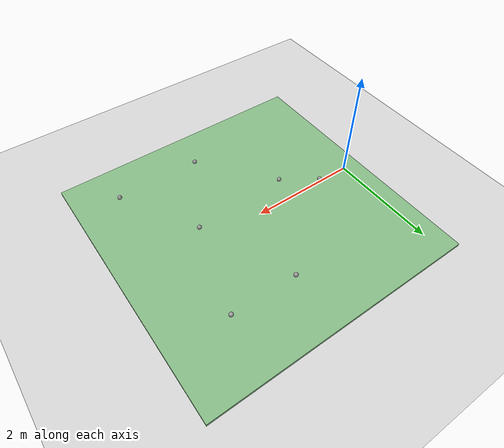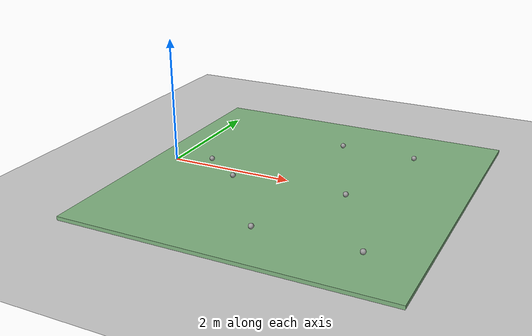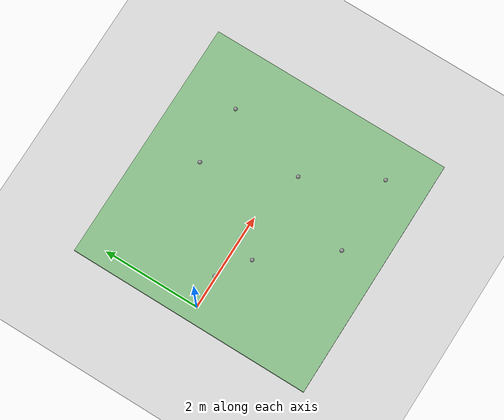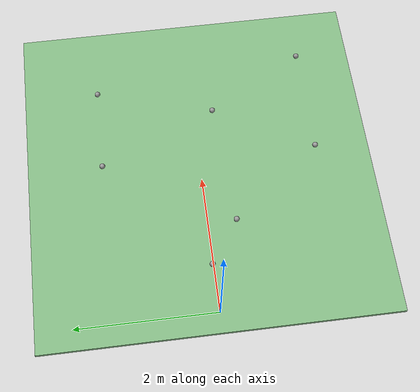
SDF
<sdf version="1.6">
 <world name="default">
  <light name="sun" type="directional">
   <pose>0 0 10 0 -0 0</pose>
   <diffuse>0.8 0.8 0.8 1</diffuse>
   <specular>0.2 0.2 0.2 1</specular>
   <attenuation>
    <range>1000</range>
    <constant>0.9</constant>
    <linear>0.01</linear>
    <quadratic>0.001</quadratic>
   </attenuation>
   <direction>-0.5 0.1 -0.9</direction>
  </light>
  <model name="ground_plane">
   <static>1</static>
   <link name="link">
    <collision name="collision">
     <geometry><plane><normal>0 0 1</normal><size>100 100</size></plane></geometry>
     <surface>
      <contact><collide_bitmask>65535</collide_bitmask></contact>
      <friction><ode><mu>100</mu><mu2>50</mu2></ode></friction>
     </surface>
    </collision>
    <visual name="visual">
     <cast_shadows>0</cast_shadows>
     <geometry><plane><normal>0 0 1</normal><size>100 100</size></plane></geometry>
     <material>
      <script><uri>file://media/materials/scripts/gazebo.material</uri><name>Gazebo/Grey</name></script>
     </material>
    </visual>
   </link>
  </model>
  <gravity>0 0 -9.8</gravity>
  <magnetic_field>6e-06 2.3e-05 -4.2e-05</magnetic_field>
  <atmosphere type="adiabatic"/>
  <physics name="default_physics" default="0" type="ode">
   <max_step_size>0.001</max_step_size>
   <real_time_factor>1</real_time_factor>
   <real_time_update_rate>1000</real_time_update_rate>
  </physics>
  <scene><ambient>0.4 0.4 0.4 1</ambient><background>0.7 0.7 0.7 1</background><shadows>1</shadows></scene>
  <audio><device>default</device></audio>
  <spherical_coordinates>
   <surface_model>EARTH_WGS84</surface_model>
   <latitude_deg>0</latitude_deg>
   <longitude_deg>0</longitude_deg>
   <elevation>0</elevation>
   <heading_deg>0</heading_deg>
  </spherical_coordinates>
  <model name="asphalt_plane_0">
   <link name="link">
    <inertial>
     <mass>1</mass>
     <inertia><ixx>1</ixx><ixy>0</ixy><ixz>0</ixz><iyy>1</iyy><iyz>0</iyz><izz>1</izz></inertia>
    </inertial>
    <visual name="visual">
     <cast_shadows>0</cast_shadows>
     <geometry><box><size>5 5 0.1</size></box></geometry>
     <material>
      <shader type="vertex"><normal_map>__default__</normal_map></shader>
      <ambient>0.5 0.7 0.5 1</ambient>
      <diffuse>0.5 0.7 0.5 1</diffuse>
      <specular>0.2 0.7 0.2 1</specular>
      <emissive>0 0.7 0 1</emissive>
     </material>
    </visual>
    <collision name="collision">
     <geometry><box><size>5 5 0.1</size></box></geometry>
     <surface>
      <friction>
       <ode><mu>1</mu><mu2>1</mu2><fdir1>0 0 0</fdir1><slip1>0</slip1><slip2>0</slip2></ode>
       <torsional>
        <coefficient>1</coefficient>
        <patch_radius>0</patch_radius>
        <surface_radius>0</surface_radius>
        <use_patch_radius>1</use_patch_radius>
        <ode><slip>0</slip></ode>
       </torsional>
      </friction>
      <bounce><restitution_coefficient>0</restitution_coefficient><threshold>1e+06</threshold></bounce>
      <contact>
       <collide_without_contact>0</collide_without_contact>
       <collide_without_contact_bitmask>1</collide_without_contact_bitmask>
       <collide_bitmask>1</collide_bitmask>
       <ode>
        <soft_cfm>0</soft_cfm>
        <soft_erp>0.2</soft_erp>
        <kp>1e+13</kp>
        <kd>1</kd>
        <max_vel>0.01</max_vel>
        <min_depth>0</min_depth>
       </ode>
       <bullet>
        <split_impulse>1</split_impulse>
        <split_impulse_penetration_threshold>-0.01</split_impulse_penetration_threshold>
        <soft_cfm>0</soft_cfm>
        <soft_erp>0.2</soft_erp>
        <kp>1e+13</kp>
        <kd>1</kd>
       </bullet>
      </contact>
     </surface>
    </collision>
   </link>
   <static>1</static>
   <pose>2.2 0 0 0 -0 0</pose>
  </model>
  <model name="golf_ball">
   <link name="link">
    <inertial>
     <mass>0.25</mass>
     <inertia><ixx>0.001</ixx><ixy>0</ixy><ixz>0</ixz><iyy>0.001</iyy><iyz>0</iyz><izz>0.001</izz></inertia>
    </inertial>
    <velocity_decay><linear>0</linear><angular>0</angular></velocity_decay>
    <visual name="visual">
     <geometry><sphere><radius>0.04</radius></sphere></geometry>
     <material>
      <script><uri>file://media/materials/scripts/gazebo.material</uri><name>Gazebo/Gray</name></script>
      <shader type="vertex"><normal_map>__default__</normal_map></shader>
      <ambient>0.3 0.3 0.3 1</ambient>
      <diffuse>0.7 0.7 0.7 1</diffuse>
      <specular>0.01 0.01 0.01 1</specular>
      <emissive>0 0 0 1</emissive>
     </material>
    </visual>
    <collision name="collision">
     <geometry><box><size>0.06 0.06 0.06</size></box></geometry>
     <surface>
      <friction>
       <ode><mu>30</mu><mu2>30</mu2><fdir1>0 0 0</fdir1><slip1>0</slip1><slip2>0</slip2></ode>
       <torsional>
        <coefficient>1</coefficient>
        <patch_radius>0</patch_radius>
        <surface_radius>0</surface_radius>
        <use_patch_radius>1</use_patch_radius>
        <ode><slip>0</slip></ode>
       </torsional>
      </friction>
      <bounce><restitution_coefficient>0</restitution_coefficient><threshold>1e+06</threshold></bounce>
      <contact>
       <collide_without_contact>0</collide_without_contact>
       <collide_without_contact_bitmask>1</collide_without_contact_bitmask>
       <collide_bitmask>1</collide_bitmask>
       <ode>
        <soft_cfm>0</soft_cfm>
        <soft_erp>0.2</soft_erp>
        <kp>1e+06</kp>
        <kd>100</kd>
        <max_vel>1</max_vel>
        <min_depth>0.002</min_depth>
       </ode>
       <bullet>
        <split_impulse>1</split_impulse>
        <split_impulse_penetration_threshold>-0.01</split_impulse_penetration_threshold>
        <soft_cfm>0</soft_cfm>
        <soft_erp>0.2</soft_erp>
        <kp>1e+06</kp>
        <kd>100</kd>
       </bullet>
      </contact>
     </surface>
    </collision>
   </link>
   <static>0</static>
   <pose>2.34239 1.41667 0.119939 0 -0 0</pose>
  </model>
  <model name="golf_ball_clone">
   <link name="link">
    <inertial>
     <mass>0.25</mass>
     <inertia><ixx>0.001</ixx><ixy>0</ixy><ixz>0</ixz><iyy>0.001</iyy><iyz>0</iyz><izz>0.001</izz></inertia>
    </inertial>
    <velocity_decay><linear>0</linear><angular>0</angular></velocity_decay>
    <visual name="visual">
     <geometry><sphere><radius>0.04</radius></sphere></geometry>
     <material>
      <script><uri>file://media/materials/scripts/gazebo.material</uri><name>Gazebo/Gray</name></script>
      <shader type="vertex"><normal_map>__default__</normal_map></shader>
      <ambient>0.3 0.3 0.3 1</ambient>
      <diffuse>0.7 0.7 0.7 1</diffuse>
      <specular>0.01 0.01 0.01 1</specular>
      <emissive>0 0 0 1</emissive>
     </material>
    </visual>
    <collision name="collision">
     <geometry><box><size>0.06 0.06 0.06</size></box></geometry>
     <surface>
      <friction>
       <ode><mu>30</mu><mu2>30</mu2><fdir1>0 0 0</fdir1><slip1>0</slip1><slip2>0</slip2></ode>
       <torsional>
        <coefficient>1</coefficient>
        <patch_radius>0</patch_radius>
        <surface_radius>0</surface_radius>
        <use_patch_radius>1</use_patch_radius>
        <ode><slip>0</slip></ode>
       </torsional>
      </friction>
      <bounce><restitution_coefficient>0</restitution_coefficient><threshold>1e+06</threshold></bounce>
      <contact>
       <collide_without_contact>0</collide_without_contact>
       <collide_without_contact_bitmask>1</collide_without_contact_bitmask>
       <collide_bitmask>1</collide_bitmask>
       <ode>
        <soft_cfm>0</soft_cfm>
        <soft_erp>0.2</soft_erp>
        <kp>1e+06</kp>
        <kd>100</kd>
        <max_vel>1</max_vel>
        <min_depth>0.002</min_depth>
       </ode>
       <bullet>
        <split_impulse>1</split_impulse>
        <split_impulse_penetration_threshold>-0.01</split_impulse_penetration_threshold>
        <soft_cfm>0</soft_cfm>
        <soft_erp>0.2</soft_erp>
        <kp>1e+06</kp>
        <kd>100</kd>
       </bullet>
      </contact>
     </surface>
    </collision>
   </link>
   <static>0</static>
   <pose>0.654706 0.022116 0.119943 0 -0 0</pose>
  </model>
  <model name="golf_ball_clone_clone">
   <link name="link">
    <inertial>
     <mass>0.25</mass>
     <inertia><ixx>0.001</ixx><ixy>0</ixy><ixz>0</ixz><iyy>0.001</iyy><iyz>0</iyz><izz>0.001</izz></inertia>
    </inertial>
    <velocity_decay><linear>0</linear><angular>0</angular></velocity_decay>
    <visual name="visual">
     <geometry><sphere><radius>0.04</radius></sphere></geometry>
     <material>
      <script><uri>file://media/materials/scripts/gazebo.material</uri><name>Gazebo/Gray</name></script>
      <shader type="vertex"><normal_map>__default__</normal_map></shader>
      <ambient>0.3 0.3 0.3 1</ambient>
      <diffuse>0.7 0.7 0.7 1</diffuse>
      <specular>0.01 0.01 0.01 1</specular>
      <emissive>0 0 0 1</emissive>
     </material>
    </visual>
    <collision name="collision">
     <geometry><box><size>0.06 0.06 0.06</size></box></geometry>
     <surface>
      <friction>
       <ode><mu>30</mu><mu2>30</mu2><fdir1>0 0 0</fdir1><slip1>0</slip1><slip2>0</slip2></ode>
       <torsional>
        <coefficient>1</coefficient>
        <patch_radius>0</patch_radius>
        <surface_radius>0</surface_radius>
        <use_patch_radius>1</use_patch_radius>
        <ode><slip>0</slip></ode>
       </torsional>
      </friction>
      <bounce><restitution_coefficient>0</restitution_coefficient><threshold>1e+06</threshold></bounce>
      <contact>
       <collide_without_contact>0</collide_without_contact>
       <collide_without_contact_bitmask>1</collide_without_contact_bitmask>
       <collide_bitmask>1</collide_bitmask>
       <ode>
        <soft_cfm>0</soft_cfm>
        <soft_erp>0.2</soft_erp>
        <kp>1e+06</kp>
        <kd>100</kd>
        <max_vel>1</max_vel>
        <min_depth>0.002</min_depth>
       </ode>
       <bullet>
        <split_impulse>1</split_impulse>
        <split_impulse_penetration_threshold>-0.01</split_impulse_penetration_threshold>
        <soft_cfm>0</soft_cfm>
        <soft_erp>0.2</soft_erp>
        <kp>1e+06</kp>
        <kd>100</kd>
       </bullet>
      </contact>
     </surface>
    </collision>
   </link>
   <static>0</static>
   <pose>1.2791 -0.401209 0.119943 0 -0 0</pose>
  </model>
  <model name="golf_ball_clone_clone_0">
   <link name="link">
    <inertial>
     <mass>0.25</mass>
     <inertia><ixx>0.001</ixx><ixy>0</ixy><ixz>0</ixz><iyy>0.001</iyy><iyz>0</iyz><izz>0.001</izz></inertia>
    </inertial>
    <velocity_decay><linear>0</linear><angular>0</angular></velocity_decay>
    <visual name="visual">
     <geometry><sphere><radius>0.04</radius></sphere></geometry>
     <material>
      <script><uri>file://media/materials/scripts/gazebo.material</uri><name>Gazebo/Gray</name></script>
      <shader type="vertex"><normal_map>__default__</normal_map></shader>
      <ambient>0.3 0.3 0.3 1</ambient>
      <diffuse>0.7 0.7 0.7 1</diffuse>
      <specular>0.01 0.01 0.01 1</specular>
      <emissive>0 0 0 1</emissive>
     </material>
    </visual>
    <collision name="collision">
     <geometry><box><size>0.06 0.06 0.06</size></box></geometry>
     <surface>
      <friction>
       <ode><mu>30</mu><mu2>30</mu2><fdir1>0 0 0</fdir1><slip1>0</slip1><slip2>0</slip2></ode>
       <torsional>
        <coefficient>1</coefficient>
        <patch_radius>0</patch_radius>
        <surface_radius>0</surface_radius>
        <use_patch_radius>1</use_patch_radius>
        <ode><slip>0</slip></ode>
       </torsional>
      </friction>
      <bounce><restitution_coefficient>0</restitution_coefficient><threshold>1e+06</threshold></bounce>
      <contact>
       <collide_without_contact>0</collide_without_contact>
       <collide_without_contact_bitmask>1</collide_without_contact_bitmask>
       <collide_bitmask>1</collide_bitmask>
       <ode>
        <soft_cfm>0</soft_cfm>
        <soft_erp>0.2</soft_erp>
        <kp>1e+06</kp>
        <kd>100</kd>
        <max_vel>1</max_vel>
        <min_depth>0.002</min_depth>
       </ode>
       <bullet>
        <split_impulse>1</split_impulse>
        <split_impulse_penetration_threshold>-0.01</split_impulse_penetration_threshold>
        <soft_cfm>0</soft_cfm>
        <soft_erp>0.2</soft_erp>
        <kp>1e+06</kp>
        <kd>100</kd>
       </bullet>
      </contact>
     </surface>
    </collision>
   </link>
   <static>0</static>
   <pose>2.31214 -1.71263 0.119943 0 -0 0</pose>
  </model>
  <model name="golf_ball_clone_clone_1">
   <link name="link">
    <inertial>
     <mass>0.25</mass>
     <inertia><ixx>0.001</ixx><ixy>0</ixy><ixz>0</ixz><iyy>0.001</iyy><iyz>0</iyz><izz>0.001</izz></inertia>
    </inertial>
    <velocity_decay><linear>0</linear><angular>0</angular></velocity_decay>
    <visual name="visual">
     <geometry><sphere><radius>0.04</radius></sphere></geometry>
     <material>
      <script><uri>file://media/materials/scripts/gazebo.material</uri><name>Gazebo/Gray</name></script>
      <shader type="vertex"><normal_map>__default__</normal_map></shader>
      <ambient>0.3 0.3 0.3 1</ambient>
      <diffuse>0.7 0.7 0.7 1</diffuse>
      <specular>0.01 0.01 0.01 1</specular>
      <emissive>0 0 0 1</emissive>
     </material>
    </visual>
    <collision name="collision">
     <geometry><box><size>0.06 0.06 0.06</size></box></geometry>
     <surface>
      <friction>
       <ode><mu>30</mu><mu2>30</mu2><fdir1>0 0 0</fdir1><slip1>0</slip1><slip2>0</slip2></ode>
       <torsional>
        <coefficient>1</coefficient>
        <patch_radius>0</patch_radius>
        <surface_radius>0</surface_radius>
        <use_patch_radius>1</use_patch_radius>
        <ode><slip>0</slip></ode>
       </torsional>
      </friction>
      <bounce><restitution_coefficient>0</restitution_coefficient><threshold>1e+06</threshold></bounce>
      <contact>
       <collide_without_contact>0</collide_without_contact>
       <collide_without_contact_bitmask>1</collide_without_contact_bitmask>
       <collide_bitmask>1</collide_bitmask>
       <ode>
        <soft_cfm>0</soft_cfm>
        <soft_erp>0.2</soft_erp>
        <kp>1e+06</kp>
        <kd>100</kd>
        <max_vel>1</max_vel>
        <min_depth>0.002</min_depth>
       </ode>
       <bullet>
        <split_impulse>1</split_impulse>
        <split_impulse_penetration_threshold>-0.01</split_impulse_penetration_threshold>
        <soft_cfm>0</soft_cfm>
        <soft_erp>0.2</soft_erp>
        <kp>1e+06</kp>
        <kd>100</kd>
       </bullet>
      </contact>
     </surface>
    </collision>
   </link>
   <static>0</static>
   <pose>3.88906 -1.70277 0.119943 0 -0 0</pose>
  </model>
  <model name="golf_ball_clone_clone_2">
   <link name="link">
    <inertial>
     <mass>0.25</mass>
     <inertia><ixx>0.001</ixx><ixy>0</ixy><ixz>0</ixz><iyy>0.001</iyy><iyz>0</iyz><izz>0.001</izz></inertia>
    </inertial>
    <velocity_decay><linear>0</linear><angular>0</angular></velocity_decay>
    <visual name="visual">
     <geometry><sphere><radius>0.04</radius></sphere></geometry>
     <material>
      <script><uri>file://media/materials/scripts/gazebo.material</uri><name>Gazebo/Gray</name></script>
      <shader type="vertex"><normal_map>__default__</normal_map></shader>
      <ambient>0.3 0.3 0.3 1</ambient>
      <diffuse>0.7 0.7 0.7 1</diffuse>
      <specular>0.01 0.01 0.01 1</specular>
      <emissive>0 0 0 1</emissive>
     </material>
    </visual>
    <collision name="collision">
     <geometry><box><size>0.06 0.06 0.06</size></box></geometry>
     <surface>
      <friction>
       <ode><mu>30</mu><mu2>30</mu2><fdir1>0 0 0</fdir1><slip1>0</slip1><slip2>0</slip2></ode>
       <torsional>
        <coefficient>1</coefficient>
        <patch_radius>0</patch_radius>
        <surface_radius>0</surface_radius>
        <use_patch_radius>1</use_patch_radius>
        <ode><slip>0</slip></ode>
       </torsional>
      </friction>
      <bounce><restitution_coefficient>0</restitution_coefficient><threshold>1e+06</threshold></bounce>
      <contact>
       <collide_without_contact>0</collide_without_contact>
       <collide_without_contact_bitmask>1</collide_without_contact_bitmask>
       <collide_bitmask>1</collide_bitmask>
       <ode>
        <soft_cfm>0</soft_cfm>
        <soft_erp>0.2</soft_erp>
        <kp>1e+06</kp>
        <kd>100</kd>
        <max_vel>1</max_vel>
        <min_depth>0.002</min_depth>
       </ode>
       <bullet>
        <split_impulse>1</split_impulse>
        <split_impulse_penetration_threshold>-0.01</split_impulse_penetration_threshold>
        <soft_cfm>0</soft_cfm>
        <soft_erp>0.2</soft_erp>
        <kp>1e+06</kp>
        <kd>100</kd>
       </bullet>
      </contact>
     </surface>
    </collision>
   </link>
   <static>0</static>
   <pose>3.07997 -0.286697 0.119943 0 -0 0</pose>
  </model>
  <model name="golf_ball_clone_clone_3">
   <link name="link">
    <inertial>
     <mass>0.25</mass>
     <inertia><ixx>0.001</ixx><ixy>0</ixy><ixz>0</ixz><iyy>0.001</iyy><iyz>0</iyz><izz>0.001</izz></inertia>
    </inertial>
    <velocity_decay><linear>0</linear><angular>0</angular></velocity_decay>
    <visual name="visual">
     <geometry><sphere><radius>0.04</radius></sphere></geometry>
     <material>
      <script><uri>file://media/materials/scripts/gazebo.material</uri><name>Gazebo/Gray</name></script>
      <shader type="vertex"><normal_map>__default__</normal_map></shader>
      <ambient>0.3 0.3 0.3 1</ambient>
      <diffuse>0.7 0.7 0.7 1</diffuse>
      <specular>0.01 0.01 0.01 1</specular>
      <emissive>0 0 0 1</emissive>
     </material>
    </visual>
    <collision name="collision">
     <geometry><box><size>0.06 0.06 0.06</size></box></geometry>
     <surface>
      <friction>
       <ode><mu>30</mu><mu2>30</mu2><fdir1>0 0 0</fdir1><slip1>0</slip1><slip2>0</slip2></ode>
       <torsional>
        <coefficient>1</coefficient>
        <patch_radius>0</patch_radius>
        <surface_radius>0</surface_radius>
        <use_patch_radius>1</use_patch_radius>
        <ode><slip>0</slip></ode>
       </torsional>
      </friction>
      <bounce><restitution_coefficient>0</restitution_coefficient><threshold>1e+06</threshold></bounce>
      <contact>
       <collide_without_contact>0</collide_without_contact>
       <collide_without_contact_bitmask>1</collide_without_contact_bitmask>
       <collide_bitmask>1</collide_bitmask>
       <ode>
        <soft_cfm>0</soft_cfm>
        <soft_erp>0.2</soft_erp>
        <kp>1e+06</kp>
        <kd>100</kd>
        <max_vel>1</max_vel>
        <min_depth>0.002</min_depth>
       </ode>
       <bullet>
        <split_impulse>1</split_impulse>
        <split_impulse_penetration_threshold>-0.01</split_impulse_penetration_threshold>
        <soft_cfm>0</soft_cfm>
        <soft_erp>0.2</soft_erp>
        <kp>1e+06</kp>
        <kd>100</kd>
       </bullet>
      </contact>
     </surface>
    </collision>
   </link>
   <static>0</static>
   <pose>3.56819 1.40198 0.119943 0 -0 0</pose>
  </model>
 </world>
</sdf>
